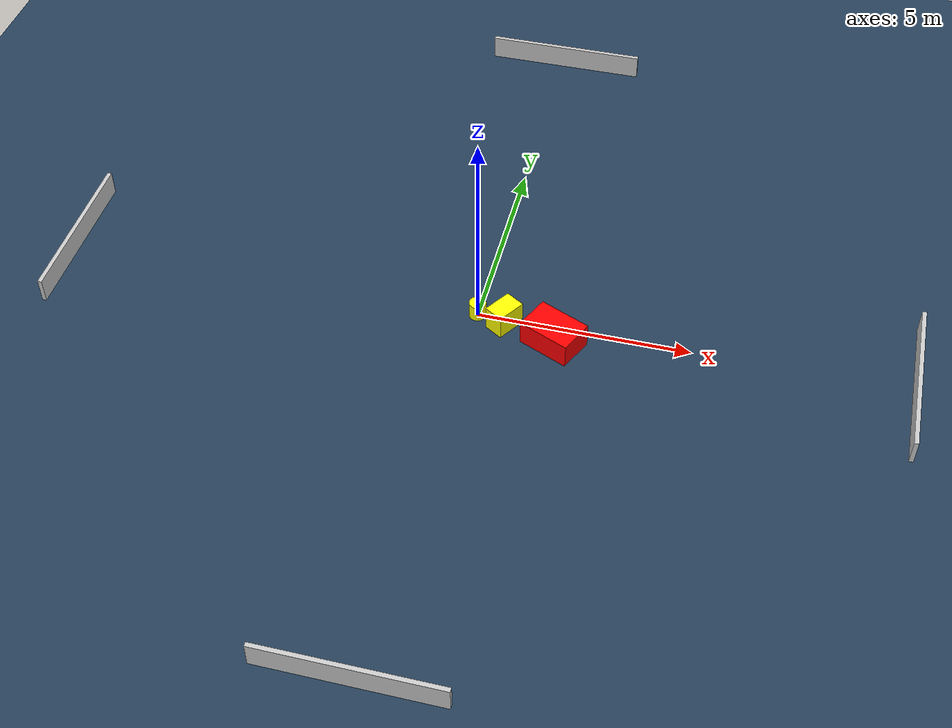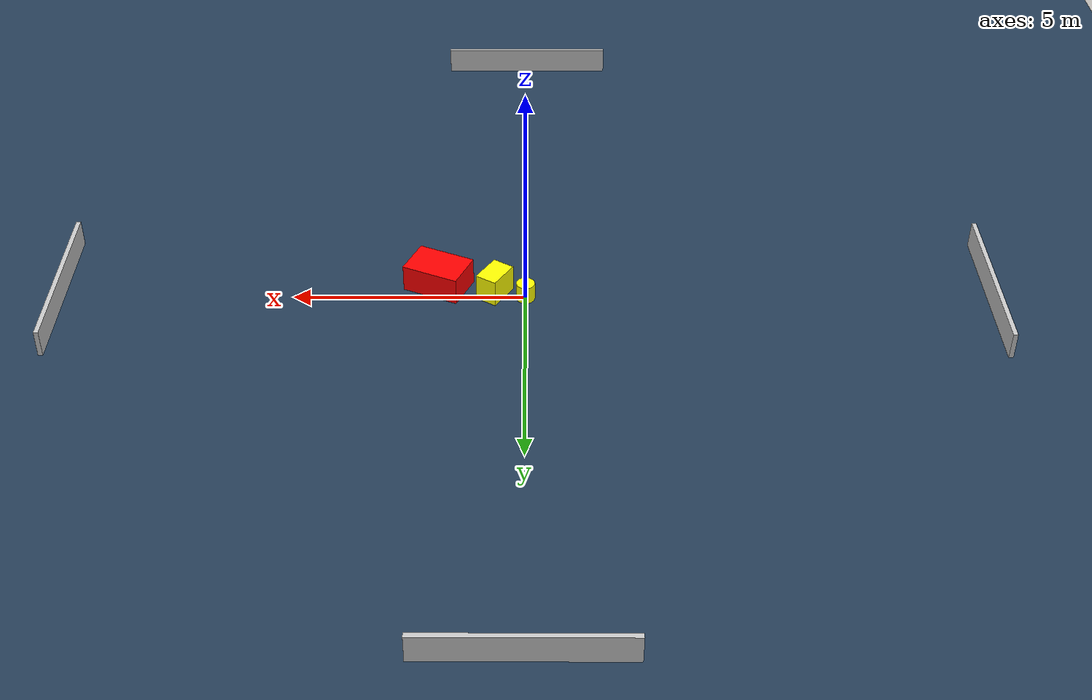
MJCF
<?xml version="1.0" ?>
<mujoco model="generated_environment">
  <option timestep="0.01" integrator="RK4" cone="elliptic"/>
  <default>
    <geom density="1"/>
  </default>
  <asset>
    <texture builtin="gradient" height="3072" name="skybox" rgb1="0.3 0.5 0.7" rgb2="0 0 0" type="skybox" width="512"/>
    <texture builtin="checker" height="300" name="groundplane" rgb1="0.2 0.3 0.4" rgb2="0.1 0.2 0.3" type="2d" width="300"/>
    <material name="groundplane" reflectance="0.2" texrepeat="5 5" texture="groundplane"/>
  </asset>
  <worldbody>
    <light dir="0 0 -1" directional="true" pos="0 0 1.5"/>
    <geom condim="3" friction="0.5 0.005 0.001" material="groundplane" name="floor" pos="0 0 0" size="0 0 0.05" type="plane"/>
    <body name="walls">
      <geom name="wall_1" condim="4" pos="-10.0 0.0 0.3" rgba="0.800000011920929 0.800000011920929 0.800000011920929 1.0" size="0.05 2.0 0.3" type="box"/>
      <geom name="wall_2" condim="4" pos="10.0 0.0 0.3" rgba="0.800000011920929 0.800000011920929 0.800000011920929 1.0" size="0.05 2.0 0.3" type="box"/>
      <geom name="wall_3" condim="4" pos="0.0 -10.0 0.3" rgba="0.800000011920929 0.800000011920929 0.800000011920929 1.0" size="2.0 0.05 0.3" type="box"/>
      <geom name="wall_4" condim="4" pos="0.0 10.0 0.3" rgba="0.800000011920929 0.800000011920929 0.800000011920929 1.0" size="2.0 0.05 0.3" type="box"/>
    </body>
    <body name="robot">
      <joint name="joint_x" type="slide" pos="0 0 0" axis="1 0 0"/>
      <joint name="joint_y" type="slide" pos="0 0 0" axis="0 1 0"/>
      <geom name="robot" type="cylinder" pos="0.0 0.0 0.2" size="0.2 0.2 0.0" mass="5.0" friction="1.0 0.005 0.0001" condim="4" rgba="1.0 1.0 0.0 1.0"/>
    </body>
    <body name="obstacle_1_movable">
      <geom name="obstacle_1_movable" condim="4" pos="0.6657113585281056 -0.1555999333154481 0.3" euler="0 0 237.61623329679384" friction="0.0 0.005 0.001" rgba="1.0 1.0 0.0 1.0" size="0.35514653146954844 0.2415074622684989 0.3" type="box" mass="0.1"/>
      <joint type="free"/>
    </body>
    <body name="obstacle_2_static">
      <geom name="obstacle_2_static" condim="4" pos="1.890082171654663 -0.44597466063271685 0.3" euler="0 0 155.8743215312231" friction="0.0 0.005 0.001" rgba="1.0 0.0 0.0 1.0" size="0.6342372448814697 0.4335099201304702 0.3" type="box"/>
    </body>
  </worldbody>
  <actuator>
    <motor name="actuator_x" joint="joint_x" gear="1" ctrlrange="-1 1"/>
    <motor name="actuator_y" joint="joint_y" gear="1" ctrlrange="-1 1"/>
  </actuator>
</mujoco>
